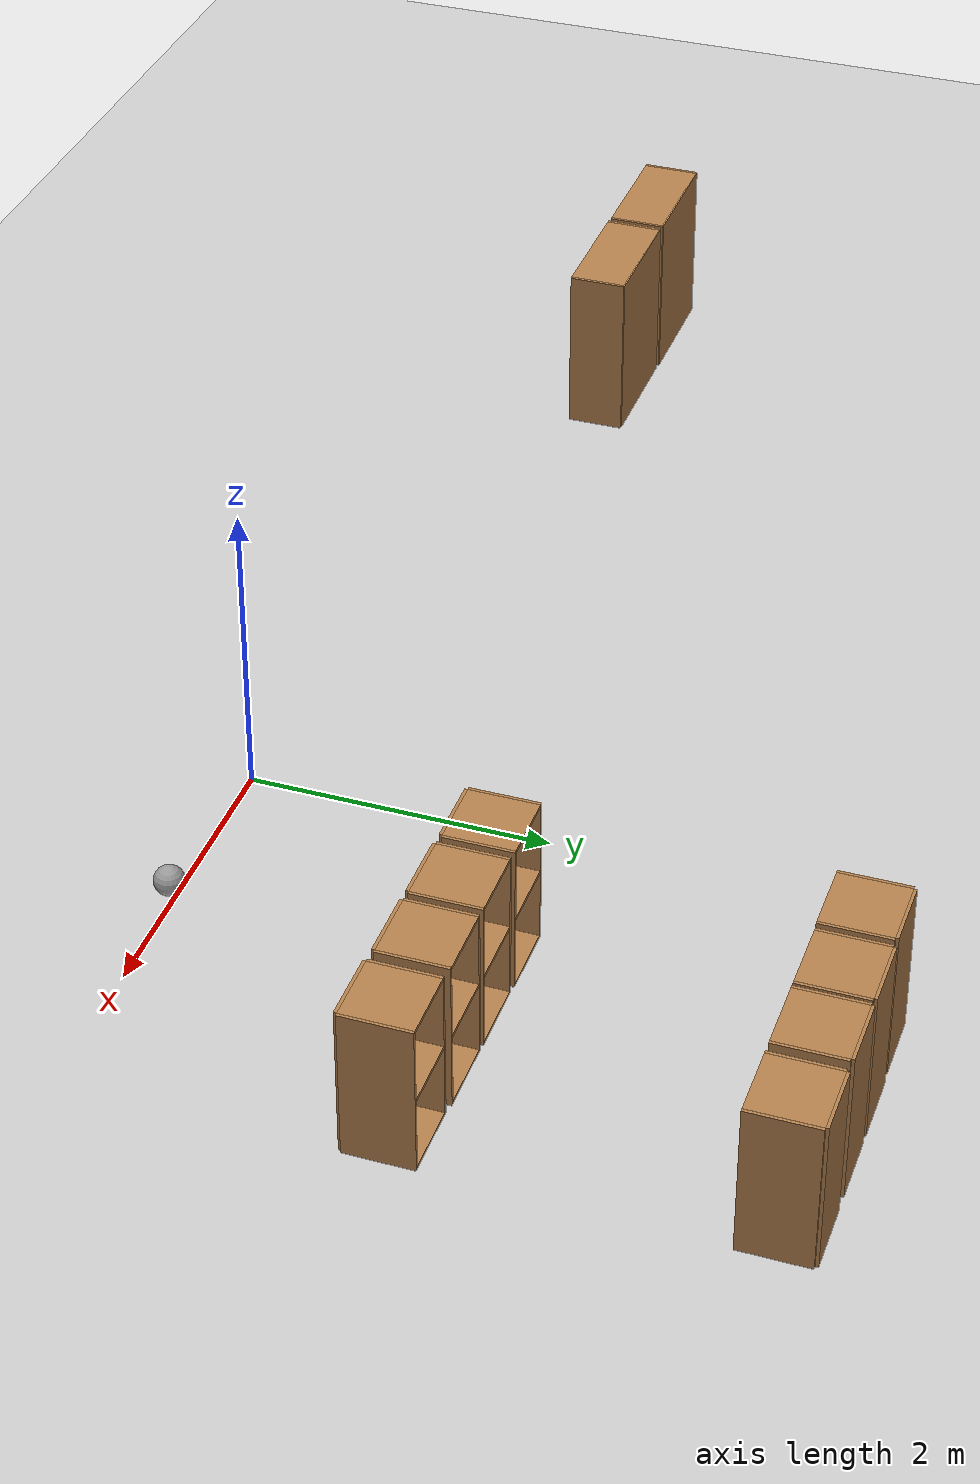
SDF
<sdf version="1.6">
 <world name="default">
  <model name="ground_plane">
   <static>1</static>
   <link name="link">
    <collision name="collision">
     <geometry><plane><normal>0 0 1</normal><size>100 100</size></plane></geometry>
     <surface><friction><ode><mu>100</mu><mu2>50</mu2></ode></friction></surface>
    </collision>
    <visual name="visual">
     <cast_shadows>0</cast_shadows>
     <geometry><plane><normal>0 0 1</normal><size>100 100</size></plane></geometry>
     <material>
      <script><uri>file://media/materials/scripts/gazebo.material</uri><name>Gazebo/Grey</name></script>
     </material>
    </visual>
   </link>
  </model>
  <model name="cabinet">
   <static>1</static>
   <link name="cabinet_bottom_plate">
    <inertial>
     <pose>0 0 -1 0 -0 0</pose>
     <inertia><ixx>2.05</ixx><ixy>0</ixy><ixz>0</ixz><iyy>2.05</iyy><iyz>0</iyz><izz>2.05</izz></inertia>
     <mass>25</mass>
    </inertial>
    <collision name="cabinet_bottom_plate_geom">
     <pose>0 0 0.01 0 -0 0</pose>
     <geometry><box><size>0.45 0.45 0.02</size></box></geometry>
    </collision>
    <visual name="cabinet_bottom_plate_geom_visual">
     <pose>0 0 0.01 0 -0 0</pose>
     <geometry><box><size>0.45 0.45 0.02</size></box></geometry>
     <material>
      <script><uri>file://media/materials/scripts/gazebo.material</uri><name>Gazebo/Wood</name></script>
     </material>
    </visual>
    <collision name="cabinet_bottom_plate_geom_cabinet_back_plate">
     <pose>0.235 0 0.51 0 -0 0</pose>
     <geometry><box><size>0.02 0.45 1.02</size></box></geometry>
    </collision>
    <visual name="cabinet_bottom_plate_geom_cabinet_back_plate_visual">
     <pose>0.235 0 0.51 0 -0 0</pose>
     <geometry><box><size>0.02 0.45 1.02</size></box></geometry>
     <material>
      <script><uri>file://media/materials/scripts/gazebo.material</uri><name>Gazebo/Wood</name></script>
     </material>
    </visual>
    <collision name="cabinet_bottom_plate_geom_cabinet_left_plate">
     <pose>0 0.235 0.51 0 -0 0</pose>
     <geometry><box><size>0.45 0.02 1.02</size></box></geometry>
    </collision>
    <visual name="cabinet_bottom_plate_geom_cabinet_left_plate_visual">
     <pose>0 0.235 0.51 0 -0 0</pose>
     <geometry><box><size>0.45 0.02 1.02</size></box></geometry>
     <material>
      <script><uri>file://media/materials/scripts/gazebo.material</uri><name>Gazebo/Wood</name></script>
     </material>
    </visual>
    <collision name="cabinet_bottom_plate_geom_cabinet_middle_plate">
     <pose>0 0 0.51 0 -0 0</pose>
     <geometry><box><size>0.45 0.45 0.02</size></box></geometry>
    </collision>
    <visual name="cabinet_bottom_plate_geom_cabinet_middle_plate_visual">
     <pose>0 0 0.51 0 -0 0</pose>
     <geometry><box><size>0.45 0.45 0.02</size></box></geometry>
     <material>
      <script><uri>file://media/materials/scripts/gazebo.material</uri><name>Gazebo/Wood</name></script>
     </material>
    </visual>
    <collision name="cabinet_bottom_plate_geom_cabinet_right_plate">
     <pose>0 -0.235 0.51 0 -0 0</pose>
     <geometry><box><size>0.45 0.02 1.02</size></box></geometry>
    </collision>
    <visual name="cabinet_bottom_plate_geom_cabinet_right_plate_visual">
     <pose>0 -0.235 0.51 0 -0 0</pose>
     <geometry><box><size>0.45 0.02 1.02</size></box></geometry>
     <material>
      <script><uri>file://media/materials/scripts/gazebo.material</uri><name>Gazebo/Wood</name></script>
     </material>
    </visual>
    <collision name="cabinet_bottom_plate_geom_cabinet_top_plate">
     <pose>0 0 1.01 0 -0 0</pose>
     <geometry><box><size>0.45 0.45 0.02</size></box></geometry>
    </collision>
    <visual name="cabinet_bottom_plate_geom_cabinet_top_plate_visual">
     <pose>0 0 1.01 0 -0 0</pose>
     <geometry><box><size>0.45 0.45 0.02</size></box></geometry>
     <material>
      <script><uri>file://media/materials/scripts/gazebo.material</uri><name>Gazebo/Wood</name></script>
     </material>
    </visual>
   </link>
   <pose>2.16087 1.98414 0 0 0 -1.5708</pose>
  </model>
  <model name="cabinet_0">
   <static>1</static>
   <link name="cabinet_bottom_plate">
    <inertial>
     <pose>0 0 -1 0 -0 0</pose>
     <inertia><ixx>2.05</ixx><ixy>0</ixy><ixz>0</ixz><iyy>2.05</iyy><iyz>0</iyz><izz>2.05</izz></inertia>
     <mass>25</mass>
    </inertial>
    <collision name="cabinet_bottom_plate_geom">
     <pose>0 0 0.01 0 -0 0</pose>
     <geometry><box><size>0.45 0.45 0.02</size></box></geometry>
    </collision>
    <visual name="cabinet_bottom_plate_geom_visual">
     <pose>0 0 0.01 0 -0 0</pose>
     <geometry><box><size>0.45 0.45 0.02</size></box></geometry>
     <material>
      <script><uri>file://media/materials/scripts/gazebo.material</uri><name>Gazebo/Wood</name></script>
     </material>
    </visual>
    <collision name="cabinet_bottom_plate_geom_cabinet_back_plate">
     <pose>0.235 0 0.51 0 -0 0</pose>
     <geometry><box><size>0.02 0.45 1.02</size></box></geometry>
    </collision>
    <visual name="cabinet_bottom_plate_geom_cabinet_back_plate_visual">
     <pose>0.235 0 0.51 0 -0 0</pose>
     <geometry><box><size>0.02 0.45 1.02</size></box></geometry>
     <material>
      <script><uri>file://media/materials/scripts/gazebo.material</uri><name>Gazebo/Wood</name></script>
     </material>
    </visual>
    <collision name="cabinet_bottom_plate_geom_cabinet_left_plate">
     <pose>0 0.235 0.51 0 -0 0</pose>
     <geometry><box><size>0.45 0.02 1.02</size></box></geometry>
    </collision>
    <visual name="cabinet_bottom_plate_geom_cabinet_left_plate_visual">
     <pose>0 0.235 0.51 0 -0 0</pose>
     <geometry><box><size>0.45 0.02 1.02</size></box></geometry>
     <material>
      <script><uri>file://media/materials/scripts/gazebo.material</uri><name>Gazebo/Wood</name></script>
     </material>
    </visual>
    <collision name="cabinet_bottom_plate_geom_cabinet_middle_plate">
     <pose>0 0 0.51 0 -0 0</pose>
     <geometry><box><size>0.45 0.45 0.02</size></box></geometry>
    </collision>
    <visual name="cabinet_bottom_plate_geom_cabinet_middle_plate_visual">
     <pose>0 0 0.51 0 -0 0</pose>
     <geometry><box><size>0.45 0.45 0.02</size></box></geometry>
     <material>
      <script><uri>file://media/materials/scripts/gazebo.material</uri><name>Gazebo/Wood</name></script>
     </material>
    </visual>
    <collision name="cabinet_bottom_plate_geom_cabinet_right_plate">
     <pose>0 -0.235 0.51 0 -0 0</pose>
     <geometry><box><size>0.45 0.02 1.02</size></box></geometry>
    </collision>
    <visual name="cabinet_bottom_plate_geom_cabinet_right_plate_visual">
     <pose>0 -0.235 0.51 0 -0 0</pose>
     <geometry><box><size>0.45 0.02 1.02</size></box></geometry>
     <material>
      <script><uri>file://media/materials/scripts/gazebo.material</uri><name>Gazebo/Wood</name></script>
     </material>
    </visual>
    <collision name="cabinet_bottom_plate_geom_cabinet_top_plate">
     <pose>0 0 1.01 0 -0 0</pose>
     <geometry><box><size>0.45 0.45 0.02</size></box></geometry>
    </collision>
    <visual name="cabinet_bottom_plate_geom_cabinet_top_plate_visual">
     <pose>0 0 1.01 0 -0 0</pose>
     <geometry><box><size>0.45 0.45 0.02</size></box></geometry>
     <material>
      <script><uri>file://media/materials/scripts/gazebo.material</uri><name>Gazebo/Wood</name></script>
     </material>
    </visual>
   </link>
   <pose>2.71494 1.97132 0 0 0 -1.5708</pose>
  </model>
  <model name="cabinet_clone">
   <static>1</static>
   <link name="cabinet_bottom_plate">
    <inertial>
     <pose>0 0 -1 0 -0 0</pose>
     <inertia><ixx>2.05</ixx><ixy>0</ixy><ixz>0</ixz><iyy>2.05</iyy><iyz>0</iyz><izz>2.05</izz></inertia>
     <mass>25</mass>
    </inertial>
    <collision name="cabinet_bottom_plate_geom">
     <pose>0 0 0.01 0 -0 0</pose>
     <geometry><box><size>0.45 0.45 0.02</size></box></geometry>
    </collision>
    <visual name="cabinet_bottom_plate_geom_visual">
     <pose>0 0 0.01 0 -0 0</pose>
     <geometry><box><size>0.45 0.45 0.02</size></box></geometry>
     <material>
      <script><uri>file://media/materials/scripts/gazebo.material</uri><name>Gazebo/Wood</name></script>
     </material>
    </visual>
    <collision name="cabinet_bottom_plate_geom_cabinet_back_plate">
     <pose>0.235 0 0.51 0 -0 0</pose>
     <geometry><box><size>0.02 0.45 1.02</size></box></geometry>
    </collision>
    <visual name="cabinet_bottom_plate_geom_cabinet_back_plate_visual">
     <pose>0.235 0 0.51 0 -0 0</pose>
     <geometry><box><size>0.02 0.45 1.02</size></box></geometry>
     <material>
      <script><uri>file://media/materials/scripts/gazebo.material</uri><name>Gazebo/Wood</name></script>
     </material>
    </visual>
    <collision name="cabinet_bottom_plate_geom_cabinet_left_plate">
     <pose>0 0.235 0.51 0 -0 0</pose>
     <geometry><box><size>0.45 0.02 1.02</size></box></geometry>
    </collision>
    <visual name="cabinet_bottom_plate_geom_cabinet_left_plate_visual">
     <pose>0 0.235 0.51 0 -0 0</pose>
     <geometry><box><size>0.45 0.02 1.02</size></box></geometry>
     <material>
      <script><uri>file://media/materials/scripts/gazebo.material</uri><name>Gazebo/Wood</name></script>
     </material>
    </visual>
    <collision name="cabinet_bottom_plate_geom_cabinet_middle_plate">
     <pose>0 0 0.51 0 -0 0</pose>
     <geometry><box><size>0.45 0.45 0.02</size></box></geometry>
    </collision>
    <visual name="cabinet_bottom_plate_geom_cabinet_middle_plate_visual">
     <pose>0 0 0.51 0 -0 0</pose>
     <geometry><box><size>0.45 0.45 0.02</size></box></geometry>
     <material>
      <script><uri>file://media/materials/scripts/gazebo.material</uri><name>Gazebo/Wood</name></script>
     </material>
    </visual>
    <collision name="cabinet_bottom_plate_geom_cabinet_right_plate">
     <pose>0 -0.235 0.51 0 -0 0</pose>
     <geometry><box><size>0.45 0.02 1.02</size></box></geometry>
    </collision>
    <visual name="cabinet_bottom_plate_geom_cabinet_right_plate_visual">
     <pose>0 -0.235 0.51 0 -0 0</pose>
     <geometry><box><size>0.45 0.02 1.02</size></box></geometry>
     <material>
      <script><uri>file://media/materials/scripts/gazebo.material</uri><name>Gazebo/Wood</name></script>
     </material>
    </visual>
    <collision name="cabinet_bottom_plate_geom_cabinet_top_plate">
     <pose>0 0 1.01 0 -0 0</pose>
     <geometry><box><size>0.45 0.45 0.02</size></box></geometry>
    </collision>
    <visual name="cabinet_bottom_plate_geom_cabinet_top_plate_visual">
     <pose>0 0 1.01 0 -0 0</pose>
     <geometry><box><size>0.45 0.45 0.02</size></box></geometry>
     <material>
      <script><uri>file://media/materials/scripts/gazebo.material</uri><name>Gazebo/Wood</name></script>
     </material>
    </visual>
   </link>
   <pose>1.62851 1.98889 0 0 0 -1.5708</pose>
  </model>
  <model name="cabinet_clone_0">
   <static>1</static>
   <link name="cabinet_bottom_plate">
    <inertial>
     <pose>0 0 -1 0 -0 0</pose>
     <inertia><ixx>2.05</ixx><ixy>0</ixy><ixz>0</ixz><iyy>2.05</iyy><iyz>0</iyz><izz>2.05</izz></inertia>
     <mass>25</mass>
    </inertial>
    <collision name="cabinet_bottom_plate_geom">
     <pose>0 0 0.01 0 -0 0</pose>
     <geometry><box><size>0.45 0.45 0.02</size></box></geometry>
    </collision>
    <visual name="cabinet_bottom_plate_geom_visual">
     <pose>0 0 0.01 0 -0 0</pose>
     <geometry><box><size>0.45 0.45 0.02</size></box></geometry>
     <material>
      <script><uri>file://media/materials/scripts/gazebo.material</uri><name>Gazebo/Wood</name></script>
     </material>
    </visual>
    <collision name="cabinet_bottom_plate_geom_cabinet_back_plate">
     <pose>0.235 0 0.51 0 -0 0</pose>
     <geometry><box><size>0.02 0.45 1.02</size></box></geometry>
    </collision>
    <visual name="cabinet_bottom_plate_geom_cabinet_back_plate_visual">
     <pose>0.235 0 0.51 0 -0 0</pose>
     <geometry><box><size>0.02 0.45 1.02</size></box></geometry>
     <material>
      <script><uri>file://media/materials/scripts/gazebo.material</uri><name>Gazebo/Wood</name></script>
     </material>
    </visual>
    <collision name="cabinet_bottom_plate_geom_cabinet_left_plate">
     <pose>0 0.235 0.51 0 -0 0</pose>
     <geometry><box><size>0.45 0.02 1.02</size></box></geometry>
    </collision>
    <visual name="cabinet_bottom_plate_geom_cabinet_left_plate_visual">
     <pose>0 0.235 0.51 0 -0 0</pose>
     <geometry><box><size>0.45 0.02 1.02</size></box></geometry>
     <material>
      <script><uri>file://media/materials/scripts/gazebo.material</uri><name>Gazebo/Wood</name></script>
     </material>
    </visual>
    <collision name="cabinet_bottom_plate_geom_cabinet_middle_plate">
     <pose>0 0 0.51 0 -0 0</pose>
     <geometry><box><size>0.45 0.45 0.02</size></box></geometry>
    </collision>
    <visual name="cabinet_bottom_plate_geom_cabinet_middle_plate_visual">
     <pose>0 0 0.51 0 -0 0</pose>
     <geometry><box><size>0.45 0.45 0.02</size></box></geometry>
     <material>
      <script><uri>file://media/materials/scripts/gazebo.material</uri><name>Gazebo/Wood</name></script>
     </material>
    </visual>
    <collision name="cabinet_bottom_plate_geom_cabinet_right_plate">
     <pose>0 -0.235 0.51 0 -0 0</pose>
     <geometry><box><size>0.45 0.02 1.02</size></box></geometry>
    </collision>
    <visual name="cabinet_bottom_plate_geom_cabinet_right_plate_visual">
     <pose>0 -0.235 0.51 0 -0 0</pose>
     <geometry><box><size>0.45 0.02 1.02</size></box></geometry>
     <material>
      <script><uri>file://media/materials/scripts/gazebo.material</uri><name>Gazebo/Wood</name></script>
     </material>
    </visual>
    <collision name="cabinet_bottom_plate_geom_cabinet_top_plate">
     <pose>0 0 1.01 0 -0 0</pose>
     <geometry><box><size>0.45 0.45 0.02</size></box></geometry>
    </collision>
    <visual name="cabinet_bottom_plate_geom_cabinet_top_plate_visual">
     <pose>0 0 1.01 0 -0 0</pose>
     <geometry><box><size>0.45 0.45 0.02</size></box></geometry>
     <material>
      <script><uri>file://media/materials/scripts/gazebo.material</uri><name>Gazebo/Wood</name></script>
     </material>
    </visual>
   </link>
   <pose>1.09244 1.99689 0 0 0 -1.5708</pose>
  </model>
  <model name="cabinet_1">
   <static>1</static>
   <link name="cabinet_bottom_plate">
    <inertial>
     <pose>0 0 -1 0 -0 0</pose>
     <inertia><ixx>2.05</ixx><ixy>0</ixy><ixz>0</ixz><iyy>2.05</iyy><iyz>0</iyz><izz>2.05</izz></inertia>
     <mass>25</mass>
    </inertial>
    <collision name="cabinet_bottom_plate_geom">
     <pose>0 0 0.01 0 -0 0</pose>
     <geometry><box><size>0.45 0.45 0.02</size></box></geometry>
    </collision>
    <visual name="cabinet_bottom_plate_geom_visual">
     <pose>0 0 0.01 0 -0 0</pose>
     <geometry><box><size>0.45 0.45 0.02</size></box></geometry>
     <material>
      <script><uri>file://media/materials/scripts/gazebo.material</uri><name>Gazebo/Wood</name></script>
     </material>
    </visual>
    <collision name="cabinet_bottom_plate_geom_cabinet_back_plate">
     <pose>0.235 0 0.51 0 -0 0</pose>
     <geometry><box><size>0.02 0.45 1.02</size></box></geometry>
    </collision>
    <visual name="cabinet_bottom_plate_geom_cabinet_back_plate_visual">
     <pose>0.235 0 0.51 0 -0 0</pose>
     <geometry><box><size>0.02 0.45 1.02</size></box></geometry>
     <material>
      <script><uri>file://media/materials/scripts/gazebo.material</uri><name>Gazebo/Wood</name></script>
     </material>
    </visual>
    <collision name="cabinet_bottom_plate_geom_cabinet_left_plate">
     <pose>0 0.235 0.51 0 -0 0</pose>
     <geometry><box><size>0.45 0.02 1.02</size></box></geometry>
    </collision>
    <visual name="cabinet_bottom_plate_geom_cabinet_left_plate_visual">
     <pose>0 0.235 0.51 0 -0 0</pose>
     <geometry><box><size>0.45 0.02 1.02</size></box></geometry>
     <material>
      <script><uri>file://media/materials/scripts/gazebo.material</uri><name>Gazebo/Wood</name></script>
     </material>
    </visual>
    <collision name="cabinet_bottom_plate_geom_cabinet_middle_plate">
     <pose>0 0 0.51 0 -0 0</pose>
     <geometry><box><size>0.45 0.45 0.02</size></box></geometry>
    </collision>
    <visual name="cabinet_bottom_plate_geom_cabinet_middle_plate_visual">
     <pose>0 0 0.51 0 -0 0</pose>
     <geometry><box><size>0.45 0.45 0.02</size></box></geometry>
     <material>
      <script><uri>file://media/materials/scripts/gazebo.material</uri><name>Gazebo/Wood</name></script>
     </material>
    </visual>
    <collision name="cabinet_bottom_plate_geom_cabinet_right_plate">
     <pose>0 -0.235 0.51 0 -0 0</pose>
     <geometry><box><size>0.45 0.02 1.02</size></box></geometry>
    </collision>
    <visual name="cabinet_bottom_plate_geom_cabinet_right_plate_visual">
     <pose>0 -0.235 0.51 0 -0 0</pose>
     <geometry><box><size>0.45 0.02 1.02</size></box></geometry>
     <material>
      <script><uri>file://media/materials/scripts/gazebo.material</uri><name>Gazebo/Wood</name></script>
     </material>
    </visual>
    <collision name="cabinet_bottom_plate_geom_cabinet_top_plate">
     <pose>0 0 1.01 0 -0 0</pose>
     <geometry><box><size>0.45 0.45 0.02</size></box></geometry>
    </collision>
    <visual name="cabinet_bottom_plate_geom_cabinet_top_plate_visual">
     <pose>0 0 1.01 0 -0 0</pose>
     <geometry><box><size>0.45 0.45 0.02</size></box></geometry>
     <material>
      <script><uri>file://media/materials/scripts/gazebo.material</uri><name>Gazebo/Wood</name></script>
     </material>
    </visual>
   </link>
   <pose>2.72118 4.23872 0 0 -0 1.5708</pose>
  </model>
  <model name="cabinet_1_clone">
   <static>1</static>
   <link name="cabinet_bottom_plate">
    <inertial>
     <pose>0 0 -1 0 -0 0</pose>
     <inertia><ixx>2.05</ixx><ixy>0</ixy><ixz>0</ixz><iyy>2.05</iyy><iyz>0</iyz><izz>2.05</izz></inertia>
     <mass>25</mass>
    </inertial>
    <collision name="cabinet_bottom_plate_geom">
     <pose>0 0 0.01 0 -0 0</pose>
     <geometry><box><size>0.45 0.45 0.02</size></box></geometry>
    </collision>
    <visual name="cabinet_bottom_plate_geom_visual">
     <pose>0 0 0.01 0 -0 0</pose>
     <geometry><box><size>0.45 0.45 0.02</size></box></geometry>
     <material>
      <script><uri>file://media/materials/scripts/gazebo.material</uri><name>Gazebo/Wood</name></script>
     </material>
    </visual>
    <collision name="cabinet_bottom_plate_geom_cabinet_back_plate">
     <pose>0.235 0 0.51 0 -0 0</pose>
     <geometry><box><size>0.02 0.45 1.02</size></box></geometry>
    </collision>
    <visual name="cabinet_bottom_plate_geom_cabinet_back_plate_visual">
     <pose>0.235 0 0.51 0 -0 0</pose>
     <geometry><box><size>0.02 0.45 1.02</size></box></geometry>
     <material>
      <script><uri>file://media/materials/scripts/gazebo.material</uri><name>Gazebo/Wood</name></script>
     </material>
    </visual>
    <collision name="cabinet_bottom_plate_geom_cabinet_left_plate">
     <pose>0 0.235 0.51 0 -0 0</pose>
     <geometry><box><size>0.45 0.02 1.02</size></box></geometry>
    </collision>
    <visual name="cabinet_bottom_plate_geom_cabinet_left_plate_visual">
     <pose>0 0.235 0.51 0 -0 0</pose>
     <geometry><box><size>0.45 0.02 1.02</size></box></geometry>
     <material>
      <script><uri>file://media/materials/scripts/gazebo.material</uri><name>Gazebo/Wood</name></script>
     </material>
    </visual>
    <collision name="cabinet_bottom_plate_geom_cabinet_middle_plate">
     <pose>0 0 0.51 0 -0 0</pose>
     <geometry><box><size>0.45 0.45 0.02</size></box></geometry>
    </collision>
    <visual name="cabinet_bottom_plate_geom_cabinet_middle_plate_visual">
     <pose>0 0 0.51 0 -0 0</pose>
     <geometry><box><size>0.45 0.45 0.02</size></box></geometry>
     <material>
      <script><uri>file://media/materials/scripts/gazebo.material</uri><name>Gazebo/Wood</name></script>
     </material>
    </visual>
    <collision name="cabinet_bottom_plate_geom_cabinet_right_plate">
     <pose>0 -0.235 0.51 0 -0 0</pose>
     <geometry><box><size>0.45 0.02 1.02</size></box></geometry>
    </collision>
    <visual name="cabinet_bottom_plate_geom_cabinet_right_plate_visual">
     <pose>0 -0.235 0.51 0 -0 0</pose>
     <geometry><box><size>0.45 0.02 1.02</size></box></geometry>
     <material>
      <script><uri>file://media/materials/scripts/gazebo.material</uri><name>Gazebo/Wood</name></script>
     </material>
    </visual>
    <collision name="cabinet_bottom_plate_geom_cabinet_top_plate">
     <pose>0 0 1.01 0 -0 0</pose>
     <geometry><box><size>0.45 0.45 0.02</size></box></geometry>
    </collision>
    <visual name="cabinet_bottom_plate_geom_cabinet_top_plate_visual">
     <pose>0 0 1.01 0 -0 0</pose>
     <geometry><box><size>0.45 0.45 0.02</size></box></geometry>
     <material>
      <script><uri>file://media/materials/scripts/gazebo.material</uri><name>Gazebo/Wood</name></script>
     </material>
    </visual>
   </link>
   <pose>2.16972 4.23875 0 0 -0 1.5708</pose>
  </model>
  <model name="cabinet_1_clone_0">
   <static>1</static>
   <link name="cabinet_bottom_plate">
    <inertial>
     <pose>0 0 -1 0 -0 0</pose>
     <inertia><ixx>2.05</ixx><ixy>0</ixy><ixz>0</ixz><iyy>2.05</iyy><iyz>0</iyz><izz>2.05</izz></inertia>
     <mass>25</mass>
    </inertial>
    <collision name="cabinet_bottom_plate_geom">
     <pose>0 0 0.01 0 -0 0</pose>
     <geometry><box><size>0.45 0.45 0.02</size></box></geometry>
    </collision>
    <visual name="cabinet_bottom_plate_geom_visual">
     <pose>0 0 0.01 0 -0 0</pose>
     <geometry><box><size>0.45 0.45 0.02</size></box></geometry>
     <material>
      <script><uri>file://media/materials/scripts/gazebo.material</uri><name>Gazebo/Wood</name></script>
     </material>
    </visual>
    <collision name="cabinet_bottom_plate_geom_cabinet_back_plate">
     <pose>0.235 0 0.51 0 -0 0</pose>
     <geometry><box><size>0.02 0.45 1.02</size></box></geometry>
    </collision>
    <visual name="cabinet_bottom_plate_geom_cabinet_back_plate_visual">
     <pose>0.235 0 0.51 0 -0 0</pose>
     <geometry><box><size>0.02 0.45 1.02</size></box></geometry>
     <material>
      <script><uri>file://media/materials/scripts/gazebo.material</uri><name>Gazebo/Wood</name></script>
     </material>
    </visual>
    <collision name="cabinet_bottom_plate_geom_cabinet_left_plate">
     <pose>0 0.235 0.51 0 -0 0</pose>
     <geometry><box><size>0.45 0.02 1.02</size></box></geometry>
    </collision>
    <visual name="cabinet_bottom_plate_geom_cabinet_left_plate_visual">
     <pose>0 0.235 0.51 0 -0 0</pose>
     <geometry><box><size>0.45 0.02 1.02</size></box></geometry>
     <material>
      <script><uri>file://media/materials/scripts/gazebo.material</uri><name>Gazebo/Wood</name></script>
     </material>
    </visual>
    <collision name="cabinet_bottom_plate_geom_cabinet_middle_plate">
     <pose>0 0 0.51 0 -0 0</pose>
     <geometry><box><size>0.45 0.45 0.02</size></box></geometry>
    </collision>
    <visual name="cabinet_bottom_plate_geom_cabinet_middle_plate_visual">
     <pose>0 0 0.51 0 -0 0</pose>
     <geometry><box><size>0.45 0.45 0.02</size></box></geometry>
     <material>
      <script><uri>file://media/materials/scripts/gazebo.material</uri><name>Gazebo/Wood</name></script>
     </material>
    </visual>
    <collision name="cabinet_bottom_plate_geom_cabinet_right_plate">
     <pose>0 -0.235 0.51 0 -0 0</pose>
     <geometry><box><size>0.45 0.02 1.02</size></box></geometry>
    </collision>
    <visual name="cabinet_bottom_plate_geom_cabinet_right_plate_visual">
     <pose>0 -0.235 0.51 0 -0 0</pose>
     <geometry><box><size>0.45 0.02 1.02</size></box></geometry>
     <material>
      <script><uri>file://media/materials/scripts/gazebo.material</uri><name>Gazebo/Wood</name></script>
     </material>
    </visual>
    <collision name="cabinet_bottom_plate_geom_cabinet_top_plate">
     <pose>0 0 1.01 0 -0 0</pose>
     <geometry><box><size>0.45 0.45 0.02</size></box></geometry>
    </collision>
    <visual name="cabinet_bottom_plate_geom_cabinet_top_plate_visual">
     <pose>0 0 1.01 0 -0 0</pose>
     <geometry><box><size>0.45 0.45 0.02</size></box></geometry>
     <material>
      <script><uri>file://media/materials/scripts/gazebo.material</uri><name>Gazebo/Wood</name></script>
     </material>
    </visual>
   </link>
   <pose>1.66293 4.2393 0 0 -0 1.5708</pose>
  </model>
  <model name="cabinet_1_clone_1">
   <static>1</static>
   <link name="cabinet_bottom_plate">
    <inertial>
     <pose>0 0 -1 0 -0 0</pose>
     <inertia><ixx>2.05</ixx><ixy>0</ixy><ixz>0</ixz><iyy>2.05</iyy><iyz>0</iyz><izz>2.05</izz></inertia>
     <mass>25</mass>
    </inertial>
    <collision name="cabinet_bottom_plate_geom">
     <pose>0 0 0.01 0 -0 0</pose>
     <geometry><box><size>0.45 0.45 0.02</size></box></geometry>
    </collision>
    <visual name="cabinet_bottom_plate_geom_visual">
     <pose>0 0 0.01 0 -0 0</pose>
     <geometry><box><size>0.45 0.45 0.02</size></box></geometry>
     <material>
      <script><uri>file://media/materials/scripts/gazebo.material</uri><name>Gazebo/Wood</name></script>
     </material>
    </visual>
    <collision name="cabinet_bottom_plate_geom_cabinet_back_plate">
     <pose>0.235 0 0.51 0 -0 0</pose>
     <geometry><box><size>0.02 0.45 1.02</size></box></geometry>
    </collision>
    <visual name="cabinet_bottom_plate_geom_cabinet_back_plate_visual">
     <pose>0.235 0 0.51 0 -0 0</pose>
     <geometry><box><size>0.02 0.45 1.02</size></box></geometry>
     <material>
      <script><uri>file://media/materials/scripts/gazebo.material</uri><name>Gazebo/Wood</name></script>
     </material>
    </visual>
    <collision name="cabinet_bottom_plate_geom_cabinet_left_plate">
     <pose>0 0.235 0.51 0 -0 0</pose>
     <geometry><box><size>0.45 0.02 1.02</size></box></geometry>
    </collision>
    <visual name="cabinet_bottom_plate_geom_cabinet_left_plate_visual">
     <pose>0 0.235 0.51 0 -0 0</pose>
     <geometry><box><size>0.45 0.02 1.02</size></box></geometry>
     <material>
      <script><uri>file://media/materials/scripts/gazebo.material</uri><name>Gazebo/Wood</name></script>
     </material>
    </visual>
    <collision name="cabinet_bottom_plate_geom_cabinet_middle_plate">
     <pose>0 0 0.51 0 -0 0</pose>
     <geometry><box><size>0.45 0.45 0.02</size></box></geometry>
    </collision>
    <visual name="cabinet_bottom_plate_geom_cabinet_middle_plate_visual">
     <pose>0 0 0.51 0 -0 0</pose>
     <geometry><box><size>0.45 0.45 0.02</size></box></geometry>
     <material>
      <script><uri>file://media/materials/scripts/gazebo.material</uri><name>Gazebo/Wood</name></script>
     </material>
    </visual>
    <collision name="cabinet_bottom_plate_geom_cabinet_right_plate">
     <pose>0 -0.235 0.51 0 -0 0</pose>
     <geometry><box><size>0.45 0.02 1.02</size></box></geometry>
    </collision>
    <visual name="cabinet_bottom_plate_geom_cabinet_right_plate_visual">
     <pose>0 -0.235 0.51 0 -0 0</pose>
     <geometry><box><size>0.45 0.02 1.02</size></box></geometry>
     <material>
      <script><uri>file://media/materials/scripts/gazebo.material</uri><name>Gazebo/Wood</name></script>
     </material>
    </visual>
    <collision name="cabinet_bottom_plate_geom_cabinet_top_plate">
     <pose>0 0 1.01 0 -0 0</pose>
     <geometry><box><size>0.45 0.45 0.02</size></box></geometry>
    </collision>
    <visual name="cabinet_bottom_plate_geom_cabinet_top_plate_visual">
     <pose>0 0 1.01 0 -0 0</pose>
     <geometry><box><size>0.45 0.45 0.02</size></box></geometry>
     <material>
      <script><uri>file://media/materials/scripts/gazebo.material</uri><name>Gazebo/Wood</name></script>
     </material>
    </visual>
   </link>
   <pose>1.13427 4.23255 0 0 -0 1.5708</pose>
  </model>
  <model name="bookshelf">
   <static>1</static>
   <link name="link">
    <inertial><mass>1</mass></inertial>
    <collision name="back">
     <pose>0 0.005 0.6 0 -0 0</pose>
     <geometry><box><size>0.9 0.01 1.2</size></box></geometry>
    </collision>
    <visual name="visual1">
     <pose>0 0.005 0.6 0 -0 0</pose>
     <geometry><box><size>0.9 0.01 1.2</size></box></geometry>
     <material>
      <script><uri>file://media/materials/scripts/gazebo.material</uri><name>Gazebo/Wood</name></script>
     </material>
    </visual>
    <collision name="left_side">
     <pose>0.45 -0.195 0.6 0 -0 0</pose>
     <geometry><box><size>0.02 0.4 1.2</size></box></geometry>
    </collision>
    <visual name="visual2">
     <pose>0.45 -0.195 0.6 0 -0 0</pose>
     <geometry><box><size>0.02 0.4 1.2</size></box></geometry>
     <material>
      <script><uri>file://media/materials/scripts/gazebo.material</uri><name>Gazebo/Wood</name></script>
     </material>
    </visual>
    <collision name="right_side">
     <pose>-0.45 -0.195 0.6 0 -0 0</pose>
     <geometry><box><size>0.02 0.4 1.2</size></box></geometry>
    </collision>
    <visual name="visual3">
     <pose>-0.45 -0.195 0.6 0 -0 0</pose>
     <geometry><box><size>0.02 0.4 1.2</size></box></geometry>
     <material>
      <script><uri>file://media/materials/scripts/gazebo.material</uri><name>Gazebo/Wood</name></script>
     </material>
    </visual>
    <collision name="bottom">
     <pose>0 -0.195 0.03 0 -0 0</pose>
     <geometry><box><size>0.88 0.4 0.06</size></box></geometry>
    </collision>
    <visual name="visual4">
     <pose>0 -0.195 0.03 0 -0 0</pose>
     <geometry><box><size>0.88 0.4 0.06</size></box></geometry>
     <material>
      <script><uri>file://media/materials/scripts/gazebo.material</uri><name>Gazebo/Wood</name></script>
     </material>
    </visual>
    <collision name="top">
     <pose>0 -0.195 1.19 0 -0 0</pose>
     <geometry><box><size>0.88 0.4 0.02</size></box></geometry>
    </collision>
    <visual name="visual5">
     <pose>0 -0.195 1.19 0 -0 0</pose>
     <geometry><box><size>0.88 0.4 0.02</size></box></geometry>
     <material>
      <script><uri>file://media/materials/scripts/gazebo.material</uri><name>Gazebo/Wood</name></script>
     </material>
    </visual>
    <collision name="low_shelf">
     <pose>0 -0.195 0.43 0 -0 0</pose>
     <geometry><box><size>0.88 0.4 0.02</size></box></geometry>
    </collision>
    <visual name="visual6">
     <pose>0 -0.195 0.43 0 -0 0</pose>
     <geometry><box><size>0.88 0.4 0.02</size></box></geometry>
     <material>
      <script><uri>file://media/materials/scripts/gazebo.material</uri><name>Gazebo/Wood</name></script>
     </material>
    </visual>
    <collision name="high_shelf">
     <pose>0 -0.195 0.8 0 -0 0</pose>
     <geometry><box><size>0.88 0.4 0.02</size></box></geometry>
    </collision>
    <visual name="visual7">
     <pose>0 -0.195 0.8 0 -0 0</pose>
     <geometry><box><size>0.88 0.4 0.02</size></box></geometry>
     <material>
      <script><uri>file://media/materials/scripts/gazebo.material</uri><name>Gazebo/Wood</name></script>
     </material>
    </visual>
   </link>
   <pose>-6.22924 0.974511 0 0 -0 0</pose>
  </model>
  <model name="bookshelf_clone">
   <static>1</static>
   <link name="link">
    <inertial><mass>1</mass></inertial>
    <collision name="back">
     <pose>0 0.005 0.6 0 -0 0</pose>
     <geometry><box><size>0.9 0.01 1.2</size></box></geometry>
    </collision>
    <visual name="visual1">
     <pose>0 0.005 0.6 0 -0 0</pose>
     <geometry><box><size>0.9 0.01 1.2</size></box></geometry>
     <material>
      <script><uri>file://media/materials/scripts/gazebo.material</uri><name>Gazebo/Wood</name></script>
     </material>
    </visual>
    <collision name="left_side">
     <pose>0.45 -0.195 0.6 0 -0 0</pose>
     <geometry><box><size>0.02 0.4 1.2</size></box></geometry>
    </collision>
    <visual name="visual2">
     <pose>0.45 -0.195 0.6 0 -0 0</pose>
     <geometry><box><size>0.02 0.4 1.2</size></box></geometry>
     <material>
      <script><uri>file://media/materials/scripts/gazebo.material</uri><name>Gazebo/Wood</name></script>
     </material>
    </visual>
    <collision name="right_side">
     <pose>-0.45 -0.195 0.6 0 -0 0</pose>
     <geometry><box><size>0.02 0.4 1.2</size></box></geometry>
    </collision>
    <visual name="visual3">
     <pose>-0.45 -0.195 0.6 0 -0 0</pose>
     <geometry><box><size>0.02 0.4 1.2</size></box></geometry>
     <material>
      <script><uri>file://media/materials/scripts/gazebo.material</uri><name>Gazebo/Wood</name></script>
     </material>
    </visual>
    <collision name="bottom">
     <pose>0 -0.195 0.03 0 -0 0</pose>
     <geometry><box><size>0.88 0.4 0.06</size></box></geometry>
    </collision>
    <visual name="visual4">
     <pose>0 -0.195 0.03 0 -0 0</pose>
     <geometry><box><size>0.88 0.4 0.06</size></box></geometry>
     <material>
      <script><uri>file://media/materials/scripts/gazebo.material</uri><name>Gazebo/Wood</name></script>
     </material>
    </visual>
    <collision name="top">
     <pose>0 -0.195 1.19 0 -0 0</pose>
     <geometry><box><size>0.88 0.4 0.02</size></box></geometry>
    </collision>
    <visual name="visual5">
     <pose>0 -0.195 1.19 0 -0 0</pose>
     <geometry><box><size>0.88 0.4 0.02</size></box></geometry>
     <material>
      <script><uri>file://media/materials/scripts/gazebo.material</uri><name>Gazebo/Wood</name></script>
     </material>
    </visual>
    <collision name="low_shelf">
     <pose>0 -0.195 0.43 0 -0 0</pose>
     <geometry><box><size>0.88 0.4 0.02</size></box></geometry>
    </collision>
    <visual name="visual6">
     <pose>0 -0.195 0.43 0 -0 0</pose>
     <geometry><box><size>0.88 0.4 0.02</size></box></geometry>
     <material>
      <script><uri>file://media/materials/scripts/gazebo.material</uri><name>Gazebo/Wood</name></script>
     </material>
    </visual>
    <collision name="high_shelf">
     <pose>0 -0.195 0.8 0 -0 0</pose>
     <geometry><box><size>0.88 0.4 0.02</size></box></geometry>
    </collision>
    <visual name="visual7">
     <pose>0 -0.195 0.8 0 -0 0</pose>
     <geometry><box><size>0.88 0.4 0.02</size></box></geometry>
     <material>
      <script><uri>file://media/materials/scripts/gazebo.material</uri><name>Gazebo/Wood</name></script>
     </material>
    </visual>
   </link>
   <pose>-5.27577 0.96741 0 0 -0 0</pose>
  </model>
  <model name="white_ball">
   <link name="link_0">
    <inertial>
     <mass>1</mass>
     <inertia><ixx>0.1</ixx><ixy>0</ixy><ixz>0</ixz><iyy>0.1</iyy><iyz>0</iyz><izz>0.1</izz></inertia>
    </inertial>
    <visual name="visual">
     <geometry><sphere><radius>0.1</radius></sphere></geometry>
     <material>
      <lighting>1</lighting>
      <script><uri>file://media/materials/scripts/gazebo.material</uri><name>Gazebo/Grey</name></script>
      <shader type="pixel"><normal_map>__default__</normal_map></shader>
      <ambient>1 1 1 1</ambient>
      <diffuse>1 1 1 1</diffuse>
      <specular>1 1 1 1</specular>
      <emissive>1 1 1 1</emissive>
     </material>
    </visual>
    <collision name="collision">
     <geometry><sphere><radius>0.1</radius></sphere></geometry>
     <surface>
      <friction>
       <ode><mu>1</mu><mu2>1</mu2><fdir1>0 0 0</fdir1><slip1>0</slip1><slip2>0</slip2></ode>
       <torsional>
        <coefficient>1</coefficient>
        <patch_radius>0</patch_radius>
        <surface_radius>0</surface_radius>
        <use_patch_radius>1</use_patch_radius>
        <ode><slip>0</slip></ode>
       </torsional>
      </friction>
      <bounce><restitution_coefficient>0</restitution_coefficient><threshold>1e+06</threshold></bounce>
      <contact>
       <collide_without_contact>0</collide_without_contact>
       <collide_without_contact_bitmask>1</collide_without_contact_bitmask>
       <collide_bitmask>1</collide_bitmask>
       <ode>
        <soft_cfm>0</soft_cfm>
        <soft_erp>0.2</soft_erp>
        <kp>1e+13</kp>
        <kd>1</kd>
        <max_vel>0.01</max_vel>
        <min_depth>0</min_depth>
       </ode>
       <bullet>
        <split_impulse>1</split_impulse>
        <split_impulse_penetration_threshold>-0.01</split_impulse_penetration_threshold>
        <soft_cfm>0</soft_cfm>
        <soft_erp>0.2</soft_erp>
        <kp>1e+13</kp>
        <kd>1</kd>
       </bullet>
      </contact>
     </surface>
    </collision>
   </link>
   <static>0</static>
   <pose>1.19739 -0.04651 0.1 0 -0 0</pose>
  </model>
 </world>
</sdf>
